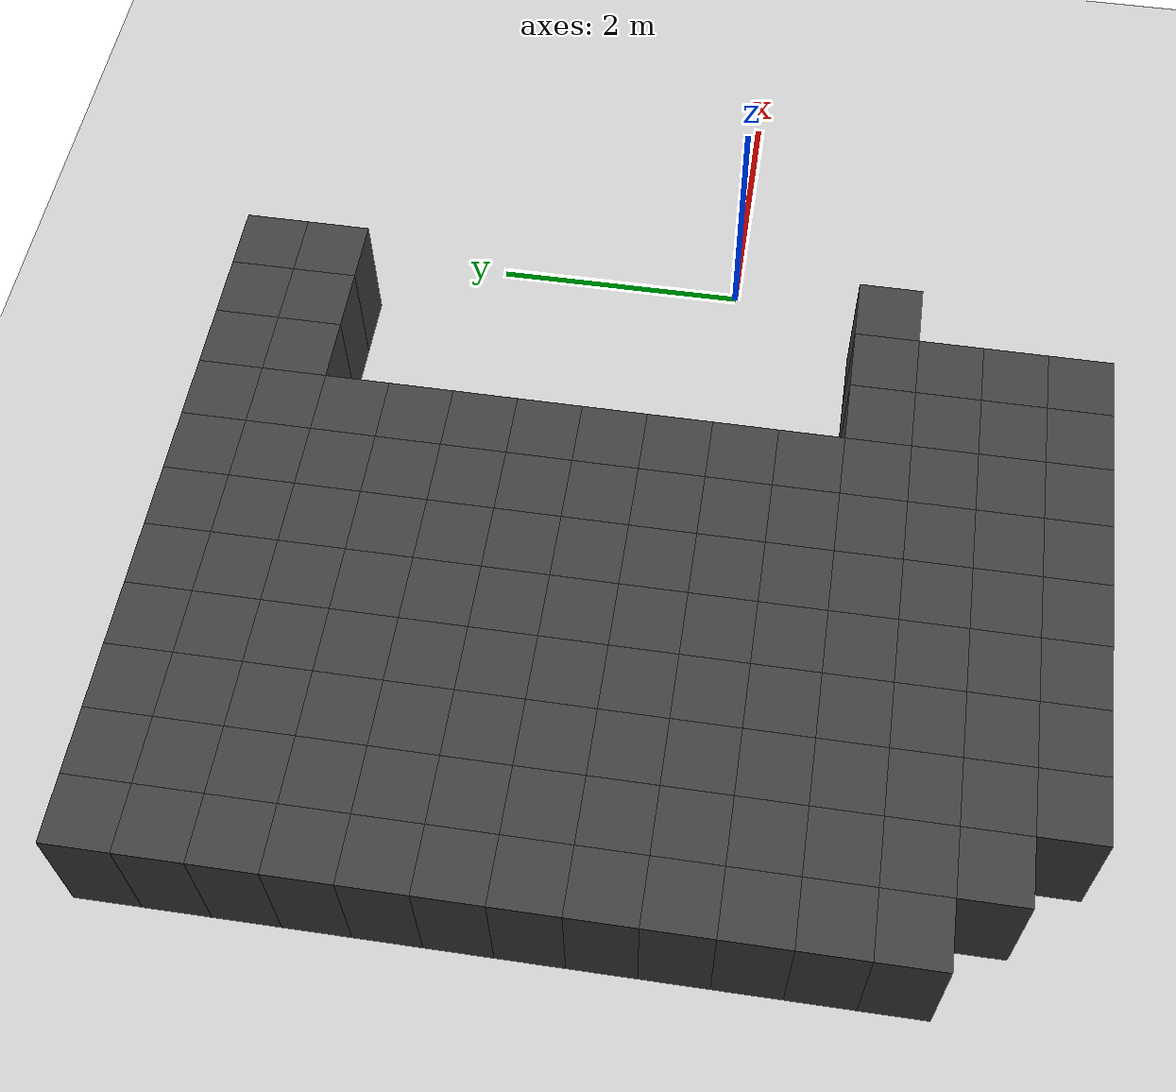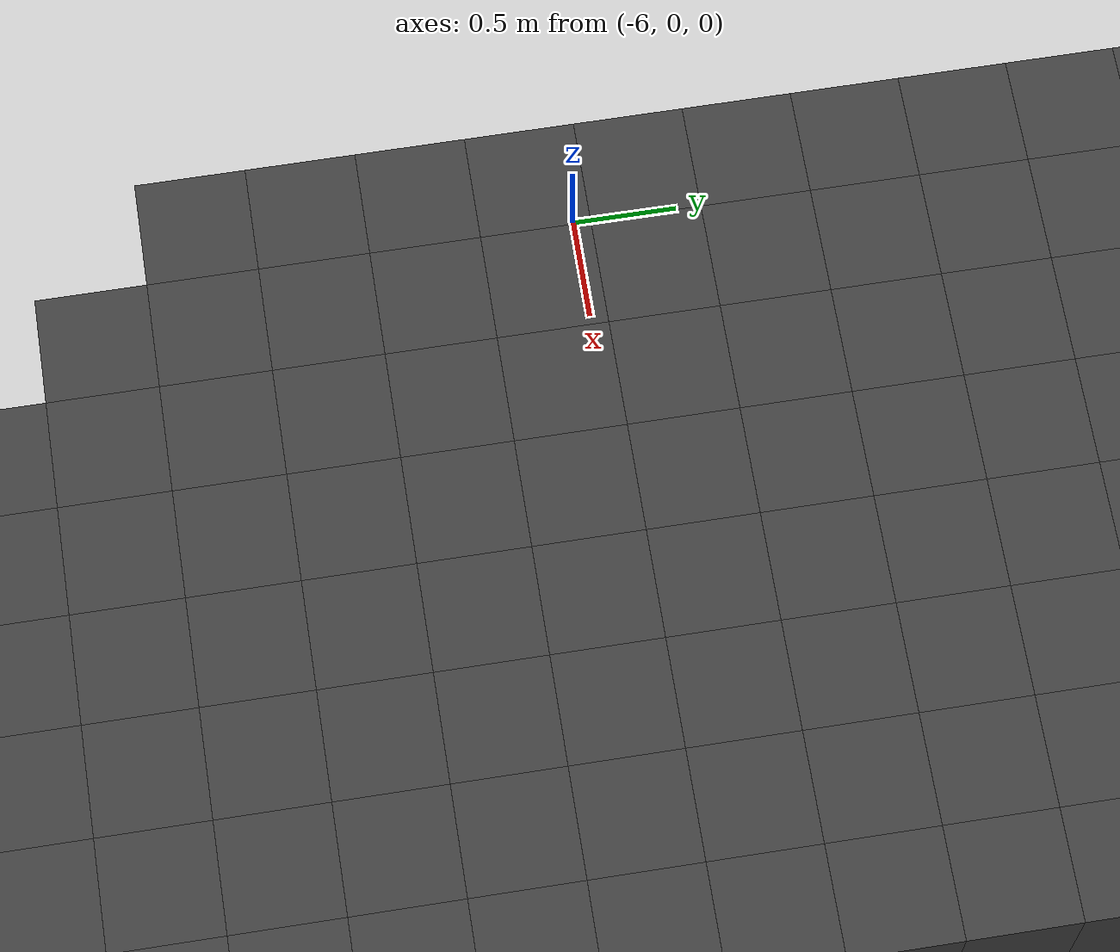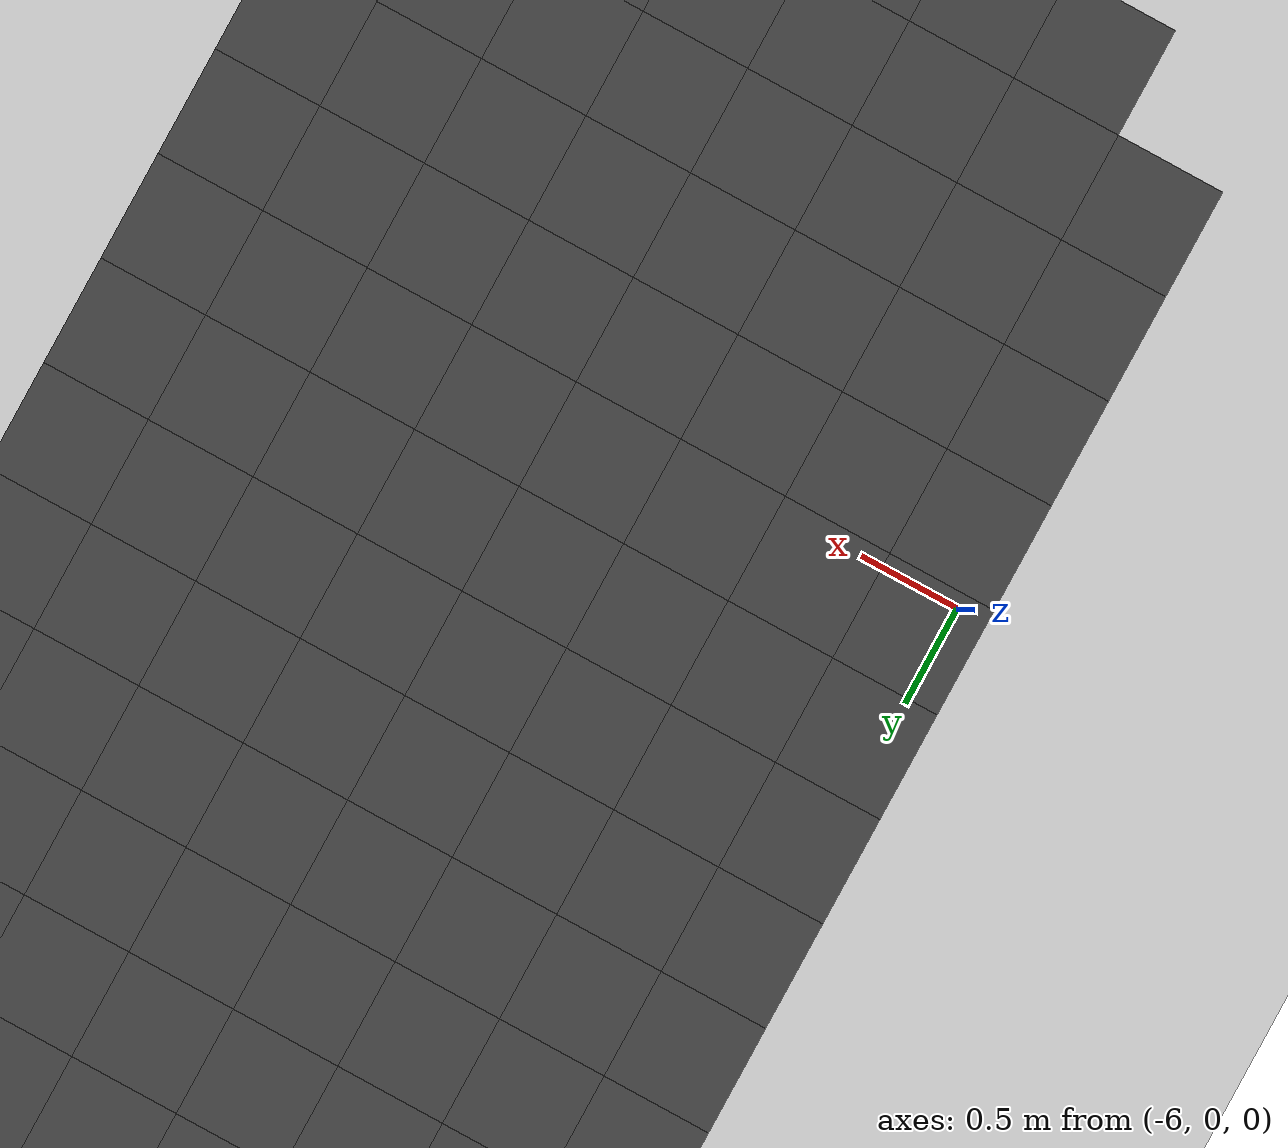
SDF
<sdf version="1.7">
 <world name="map_13994">
  <model name="ground_plane">
   <static>true</static>
   <link name="link">
    <collision name="collision">
     <geometry><plane><normal>0 0 1</normal><size>200 200</size></plane></geometry>
    </collision>
    <visual name="visual">
     <geometry><plane><normal>0 0 1</normal><size>200 200</size></plane></geometry>
     <material><ambient>0.8 0.8 0.8 1</ambient><diffuse>0.8 0.8 0.8 1</diffuse></material>
    </visual>
   </link>
  </model>
  <model name="maze_environment">
   <static>true</static>
   <link name="wall_533">
    <pose>-5.750 3.750 0.500 0 0 0</pose>
    <collision name="col"><geometry><box><size>0.5 0.5 1.0</size></box></geometry></collision>
    <visual name="vis">
     <geometry><box><size>0.5 0.5 1.0</size></box></geometry>
     <material><ambient>0.15 0.15 0.15 1</ambient><diffuse>0.25 0.25 0.25 1</diffuse></material>
    </visual>
   </link>
   <link name="wall_534">
    <pose>-5.250 3.750 0.500 0 0 0</pose>
    <collision name="col"><geometry><box><size>0.5 0.5 1.0</size></box></geometry></collision>
    <visual name="vis">
     <geometry><box><size>0.5 0.5 1.0</size></box></geometry>
     <material><ambient>0.15 0.15 0.15 1</ambient><diffuse>0.25 0.25 0.25 1</diffuse></material>
    </visual>
   </link>
   <link name="wall_535">
    <pose>-4.750 3.750 0.500 0 0 0</pose>
    <collision name="col"><geometry><box><size>0.5 0.5 1.0</size></box></geometry></collision>
    <visual name="vis">
     <geometry><box><size>0.5 0.5 1.0</size></box></geometry>
     <material><ambient>0.15 0.15 0.15 1</ambient><diffuse>0.25 0.25 0.25 1</diffuse></material>
    </visual>
   </link>
   <link name="wall_536">
    <pose>-4.250 3.750 0.500 0 0 0</pose>
    <collision name="col"><geometry><box><size>0.5 0.5 1.0</size></box></geometry></collision>
    <visual name="vis">
     <geometry><box><size>0.5 0.5 1.0</size></box></geometry>
     <material><ambient>0.15 0.15 0.15 1</ambient><diffuse>0.25 0.25 0.25 1</diffuse></material>
    </visual>
   </link>
   <link name="wall_537">
    <pose>-3.750 3.750 0.500 0 0 0</pose>
    <collision name="col"><geometry><box><size>0.5 0.5 1.0</size></box></geometry></collision>
    <visual name="vis">
     <geometry><box><size>0.5 0.5 1.0</size></box></geometry>
     <material><ambient>0.15 0.15 0.15 1</ambient><diffuse>0.25 0.25 0.25 1</diffuse></material>
    </visual>
   </link>
   <link name="wall_538">
    <pose>-3.250 3.750 0.500 0 0 0</pose>
    <collision name="col"><geometry><box><size>0.5 0.5 1.0</size></box></geometry></collision>
    <visual name="vis">
     <geometry><box><size>0.5 0.5 1.0</size></box></geometry>
     <material><ambient>0.15 0.15 0.15 1</ambient><diffuse>0.25 0.25 0.25 1</diffuse></material>
    </visual>
   </link>
   <link name="wall_539">
    <pose>-2.750 3.750 0.500 0 0 0</pose>
    <collision name="col"><geometry><box><size>0.5 0.5 1.0</size></box></geometry></collision>
    <visual name="vis">
     <geometry><box><size>0.5 0.5 1.0</size></box></geometry>
     <material><ambient>0.15 0.15 0.15 1</ambient><diffuse>0.25 0.25 0.25 1</diffuse></material>
    </visual>
   </link>
   <link name="wall_540">
    <pose>-2.250 3.750 0.500 0 0 0</pose>
    <collision name="col"><geometry><box><size>0.5 0.5 1.0</size></box></geometry></collision>
    <visual name="vis">
     <geometry><box><size>0.5 0.5 1.0</size></box></geometry>
     <material><ambient>0.15 0.15 0.15 1</ambient><diffuse>0.25 0.25 0.25 1</diffuse></material>
    </visual>
   </link>
   <link name="wall_541">
    <pose>-1.750 3.750 0.500 0 0 0</pose>
    <collision name="col"><geometry><box><size>0.5 0.5 1.0</size></box></geometry></collision>
    <visual name="vis">
     <geometry><box><size>0.5 0.5 1.0</size></box></geometry>
     <material><ambient>0.15 0.15 0.15 1</ambient><diffuse>0.25 0.25 0.25 1</diffuse></material>
    </visual>
   </link>
   <link name="wall_542">
    <pose>-1.250 3.750 0.500 0 0 0</pose>
    <collision name="col"><geometry><box><size>0.5 0.5 1.0</size></box></geometry></collision>
    <visual name="vis">
     <geometry><box><size>0.5 0.5 1.0</size></box></geometry>
     <material><ambient>0.15 0.15 0.15 1</ambient><diffuse>0.25 0.25 0.25 1</diffuse></material>
    </visual>
   </link>
   <link name="wall_543">
    <pose>-0.750 3.750 0.500 0 0 0</pose>
    <collision name="col"><geometry><box><size>0.5 0.5 1.0</size></box></geometry></collision>
    <visual name="vis">
     <geometry><box><size>0.5 0.5 1.0</size></box></geometry>
     <material><ambient>0.15 0.15 0.15 1</ambient><diffuse>0.25 0.25 0.25 1</diffuse></material>
    </visual>
   </link>
   <link name="wall_573">
    <pose>-5.750 3.250 0.500 0 0 0</pose>
    <collision name="col"><geometry><box><size>0.5 0.5 1.0</size></box></geometry></collision>
    <visual name="vis">
     <geometry><box><size>0.5 0.5 1.0</size></box></geometry>
     <material><ambient>0.15 0.15 0.15 1</ambient><diffuse>0.25 0.25 0.25 1</diffuse></material>
    </visual>
   </link>
   <link name="wall_574">
    <pose>-5.250 3.250 0.500 0 0 0</pose>
    <collision name="col"><geometry><box><size>0.5 0.5 1.0</size></box></geometry></collision>
    <visual name="vis">
     <geometry><box><size>0.5 0.5 1.0</size></box></geometry>
     <material><ambient>0.15 0.15 0.15 1</ambient><diffuse>0.25 0.25 0.25 1</diffuse></material>
    </visual>
   </link>
   <link name="wall_575">
    <pose>-4.750 3.250 0.500 0 0 0</pose>
    <collision name="col"><geometry><box><size>0.5 0.5 1.0</size></box></geometry></collision>
    <visual name="vis">
     <geometry><box><size>0.5 0.5 1.0</size></box></geometry>
     <material><ambient>0.15 0.15 0.15 1</ambient><diffuse>0.25 0.25 0.25 1</diffuse></material>
    </visual>
   </link>
   <link name="wall_576">
    <pose>-4.250 3.250 0.500 0 0 0</pose>
    <collision name="col"><geometry><box><size>0.5 0.5 1.0</size></box></geometry></collision>
    <visual name="vis">
     <geometry><box><size>0.5 0.5 1.0</size></box></geometry>
     <material><ambient>0.15 0.15 0.15 1</ambient><diffuse>0.25 0.25 0.25 1</diffuse></material>
    </visual>
   </link>
   <link name="wall_577">
    <pose>-3.750 3.250 0.500 0 0 0</pose>
    <collision name="col"><geometry><box><size>0.5 0.5 1.0</size></box></geometry></collision>
    <visual name="vis">
     <geometry><box><size>0.5 0.5 1.0</size></box></geometry>
     <material><ambient>0.15 0.15 0.15 1</ambient><diffuse>0.25 0.25 0.25 1</diffuse></material>
    </visual>
   </link>
   <link name="wall_578">
    <pose>-3.250 3.250 0.500 0 0 0</pose>
    <collision name="col"><geometry><box><size>0.5 0.5 1.0</size></box></geometry></collision>
    <visual name="vis">
     <geometry><box><size>0.5 0.5 1.0</size></box></geometry>
     <material><ambient>0.15 0.15 0.15 1</ambient><diffuse>0.25 0.25 0.25 1</diffuse></material>
    </visual>
   </link>
   <link name="wall_579">
    <pose>-2.750 3.250 0.500 0 0 0</pose>
    <collision name="col"><geometry><box><size>0.5 0.5 1.0</size></box></geometry></collision>
    <visual name="vis">
     <geometry><box><size>0.5 0.5 1.0</size></box></geometry>
     <material><ambient>0.15 0.15 0.15 1</ambient><diffuse>0.25 0.25 0.25 1</diffuse></material>
    </visual>
   </link>
   <link name="wall_580">
    <pose>-2.250 3.250 0.500 0 0 0</pose>
    <collision name="col"><geometry><box><size>0.5 0.5 1.0</size></box></geometry></collision>
    <visual name="vis">
     <geometry><box><size>0.5 0.5 1.0</size></box></geometry>
     <material><ambient>0.15 0.15 0.15 1</ambient><diffuse>0.25 0.25 0.25 1</diffuse></material>
    </visual>
   </link>
   <link name="wall_581">
    <pose>-1.750 3.250 0.500 0 0 0</pose>
    <collision name="col"><geometry><box><size>0.5 0.5 1.0</size></box></geometry></collision>
    <visual name="vis">
     <geometry><box><size>0.5 0.5 1.0</size></box></geometry>
     <material><ambient>0.15 0.15 0.15 1</ambient><diffuse>0.25 0.25 0.25 1</diffuse></material>
    </visual>
   </link>
   <link name="wall_582">
    <pose>-1.250 3.250 0.500 0 0 0</pose>
    <collision name="col"><geometry><box><size>0.5 0.5 1.0</size></box></geometry></collision>
    <visual name="vis">
     <geometry><box><size>0.5 0.5 1.0</size></box></geometry>
     <material><ambient>0.15 0.15 0.15 1</ambient><diffuse>0.25 0.25 0.25 1</diffuse></material>
    </visual>
   </link>
   <link name="wall_583">
    <pose>-0.750 3.250 0.500 0 0 0</pose>
    <collision name="col"><geometry><box><size>0.5 0.5 1.0</size></box></geometry></collision>
    <visual name="vis">
     <geometry><box><size>0.5 0.5 1.0</size></box></geometry>
     <material><ambient>0.15 0.15 0.15 1</ambient><diffuse>0.25 0.25 0.25 1</diffuse></material>
    </visual>
   </link>
   <link name="wall_613">
    <pose>-5.750 2.750 0.500 0 0 0</pose>
    <collision name="col"><geometry><box><size>0.5 0.5 1.0</size></box></geometry></collision>
    <visual name="vis">
     <geometry><box><size>0.5 0.5 1.0</size></box></geometry>
     <material><ambient>0.15 0.15 0.15 1</ambient><diffuse>0.25 0.25 0.25 1</diffuse></material>
    </visual>
   </link>
   <link name="wall_614">
    <pose>-5.250 2.750 0.500 0 0 0</pose>
    <collision name="col"><geometry><box><size>0.5 0.5 1.0</size></box></geometry></collision>
    <visual name="vis">
     <geometry><box><size>0.5 0.5 1.0</size></box></geometry>
     <material><ambient>0.15 0.15 0.15 1</ambient><diffuse>0.25 0.25 0.25 1</diffuse></material>
    </visual>
   </link>
   <link name="wall_615">
    <pose>-4.750 2.750 0.500 0 0 0</pose>
    <collision name="col"><geometry><box><size>0.5 0.5 1.0</size></box></geometry></collision>
    <visual name="vis">
     <geometry><box><size>0.5 0.5 1.0</size></box></geometry>
     <material><ambient>0.15 0.15 0.15 1</ambient><diffuse>0.25 0.25 0.25 1</diffuse></material>
    </visual>
   </link>
   <link name="wall_616">
    <pose>-4.250 2.750 0.500 0 0 0</pose>
    <collision name="col"><geometry><box><size>0.5 0.5 1.0</size></box></geometry></collision>
    <visual name="vis">
     <geometry><box><size>0.5 0.5 1.0</size></box></geometry>
     <material><ambient>0.15 0.15 0.15 1</ambient><diffuse>0.25 0.25 0.25 1</diffuse></material>
    </visual>
   </link>
   <link name="wall_617">
    <pose>-3.750 2.750 0.500 0 0 0</pose>
    <collision name="col"><geometry><box><size>0.5 0.5 1.0</size></box></geometry></collision>
    <visual name="vis">
     <geometry><box><size>0.5 0.5 1.0</size></box></geometry>
     <material><ambient>0.15 0.15 0.15 1</ambient><diffuse>0.25 0.25 0.25 1</diffuse></material>
    </visual>
   </link>
   <link name="wall_618">
    <pose>-3.250 2.750 0.500 0 0 0</pose>
    <collision name="col"><geometry><box><size>0.5 0.5 1.0</size></box></geometry></collision>
    <visual name="vis">
     <geometry><box><size>0.5 0.5 1.0</size></box></geometry>
     <material><ambient>0.15 0.15 0.15 1</ambient><diffuse>0.25 0.25 0.25 1</diffuse></material>
    </visual>
   </link>
   <link name="wall_619">
    <pose>-2.750 2.750 0.500 0 0 0</pose>
    <collision name="col"><geometry><box><size>0.5 0.5 1.0</size></box></geometry></collision>
    <visual name="vis">
     <geometry><box><size>0.5 0.5 1.0</size></box></geometry>
     <material><ambient>0.15 0.15 0.15 1</ambient><diffuse>0.25 0.25 0.25 1</diffuse></material>
    </visual>
   </link>
   <link name="wall_620">
    <pose>-2.250 2.750 0.500 0 0 0</pose>
    <collision name="col"><geometry><box><size>0.5 0.5 1.0</size></box></geometry></collision>
    <visual name="vis">
     <geometry><box><size>0.5 0.5 1.0</size></box></geometry>
     <material><ambient>0.15 0.15 0.15 1</ambient><diffuse>0.25 0.25 0.25 1</diffuse></material>
    </visual>
   </link>
   <link name="wall_642">
    <pose>-5.750 2.250 0.500 0 0 0</pose>
    <collision name="col"><geometry><box><size>0.5 0.5 1.0</size></box></geometry></collision>
    <visual name="vis">
     <geometry><box><size>0.5 0.5 1.0</size></box></geometry>
     <material><ambient>0.15 0.15 0.15 1</ambient><diffuse>0.25 0.25 0.25 1</diffuse></material>
    </visual>
   </link>
   <link name="wall_643">
    <pose>-5.250 2.250 0.500 0 0 0</pose>
    <collision name="col"><geometry><box><size>0.5 0.5 1.0</size></box></geometry></collision>
    <visual name="vis">
     <geometry><box><size>0.5 0.5 1.0</size></box></geometry>
     <material><ambient>0.15 0.15 0.15 1</ambient><diffuse>0.25 0.25 0.25 1</diffuse></material>
    </visual>
   </link>
   <link name="wall_644">
    <pose>-4.750 2.250 0.500 0 0 0</pose>
    <collision name="col"><geometry><box><size>0.5 0.5 1.0</size></box></geometry></collision>
    <visual name="vis">
     <geometry><box><size>0.5 0.5 1.0</size></box></geometry>
     <material><ambient>0.15 0.15 0.15 1</ambient><diffuse>0.25 0.25 0.25 1</diffuse></material>
    </visual>
   </link>
   <link name="wall_645">
    <pose>-4.250 2.250 0.500 0 0 0</pose>
    <collision name="col"><geometry><box><size>0.5 0.5 1.0</size></box></geometry></collision>
    <visual name="vis">
     <geometry><box><size>0.5 0.5 1.0</size></box></geometry>
     <material><ambient>0.15 0.15 0.15 1</ambient><diffuse>0.25 0.25 0.25 1</diffuse></material>
    </visual>
   </link>
   <link name="wall_646">
    <pose>-3.750 2.250 0.500 0 0 0</pose>
    <collision name="col"><geometry><box><size>0.5 0.5 1.0</size></box></geometry></collision>
    <visual name="vis">
     <geometry><box><size>0.5 0.5 1.0</size></box></geometry>
     <material><ambient>0.15 0.15 0.15 1</ambient><diffuse>0.25 0.25 0.25 1</diffuse></material>
    </visual>
   </link>
   <link name="wall_647">
    <pose>-3.250 2.250 0.500 0 0 0</pose>
    <collision name="col"><geometry><box><size>0.5 0.5 1.0</size></box></geometry></collision>
    <visual name="vis">
     <geometry><box><size>0.5 0.5 1.0</size></box></geometry>
     <material><ambient>0.15 0.15 0.15 1</ambient><diffuse>0.25 0.25 0.25 1</diffuse></material>
    </visual>
   </link>
   <link name="wall_648">
    <pose>-2.750 2.250 0.500 0 0 0</pose>
    <collision name="col"><geometry><box><size>0.5 0.5 1.0</size></box></geometry></collision>
    <visual name="vis">
     <geometry><box><size>0.5 0.5 1.0</size></box></geometry>
     <material><ambient>0.15 0.15 0.15 1</ambient><diffuse>0.25 0.25 0.25 1</diffuse></material>
    </visual>
   </link>
   <link name="wall_649">
    <pose>-2.250 2.250 0.500 0 0 0</pose>
    <collision name="col"><geometry><box><size>0.5 0.5 1.0</size></box></geometry></collision>
    <visual name="vis">
     <geometry><box><size>0.5 0.5 1.0</size></box></geometry>
     <material><ambient>0.15 0.15 0.15 1</ambient><diffuse>0.25 0.25 0.25 1</diffuse></material>
    </visual>
   </link>
   <link name="wall_671">
    <pose>-5.750 1.750 0.500 0 0 0</pose>
    <collision name="col"><geometry><box><size>0.5 0.5 1.0</size></box></geometry></collision>
    <visual name="vis">
     <geometry><box><size>0.5 0.5 1.0</size></box></geometry>
     <material><ambient>0.15 0.15 0.15 1</ambient><diffuse>0.25 0.25 0.25 1</diffuse></material>
    </visual>
   </link>
   <link name="wall_672">
    <pose>-5.250 1.750 0.500 0 0 0</pose>
    <collision name="col"><geometry><box><size>0.5 0.5 1.0</size></box></geometry></collision>
    <visual name="vis">
     <geometry><box><size>0.5 0.5 1.0</size></box></geometry>
     <material><ambient>0.15 0.15 0.15 1</ambient><diffuse>0.25 0.25 0.25 1</diffuse></material>
    </visual>
   </link>
   <link name="wall_673">
    <pose>-4.750 1.750 0.500 0 0 0</pose>
    <collision name="col"><geometry><box><size>0.5 0.5 1.0</size></box></geometry></collision>
    <visual name="vis">
     <geometry><box><size>0.5 0.5 1.0</size></box></geometry>
     <material><ambient>0.15 0.15 0.15 1</ambient><diffuse>0.25 0.25 0.25 1</diffuse></material>
    </visual>
   </link>
   <link name="wall_674">
    <pose>-4.250 1.750 0.500 0 0 0</pose>
    <collision name="col"><geometry><box><size>0.5 0.5 1.0</size></box></geometry></collision>
    <visual name="vis">
     <geometry><box><size>0.5 0.5 1.0</size></box></geometry>
     <material><ambient>0.15 0.15 0.15 1</ambient><diffuse>0.25 0.25 0.25 1</diffuse></material>
    </visual>
   </link>
   <link name="wall_675">
    <pose>-3.750 1.750 0.500 0 0 0</pose>
    <collision name="col"><geometry><box><size>0.5 0.5 1.0</size></box></geometry></collision>
    <visual name="vis">
     <geometry><box><size>0.5 0.5 1.0</size></box></geometry>
     <material><ambient>0.15 0.15 0.15 1</ambient><diffuse>0.25 0.25 0.25 1</diffuse></material>
    </visual>
   </link>
   <link name="wall_676">
    <pose>-3.250 1.750 0.500 0 0 0</pose>
    <collision name="col"><geometry><box><size>0.5 0.5 1.0</size></box></geometry></collision>
    <visual name="vis">
     <geometry><box><size>0.5 0.5 1.0</size></box></geometry>
     <material><ambient>0.15 0.15 0.15 1</ambient><diffuse>0.25 0.25 0.25 1</diffuse></material>
    </visual>
   </link>
   <link name="wall_677">
    <pose>-2.750 1.750 0.500 0 0 0</pose>
    <collision name="col"><geometry><box><size>0.5 0.5 1.0</size></box></geometry></collision>
    <visual name="vis">
     <geometry><box><size>0.5 0.5 1.0</size></box></geometry>
     <material><ambient>0.15 0.15 0.15 1</ambient><diffuse>0.25 0.25 0.25 1</diffuse></material>
    </visual>
   </link>
   <link name="wall_678">
    <pose>-2.250 1.750 0.500 0 0 0</pose>
    <collision name="col"><geometry><box><size>0.5 0.5 1.0</size></box></geometry></collision>
    <visual name="vis">
     <geometry><box><size>0.5 0.5 1.0</size></box></geometry>
     <material><ambient>0.15 0.15 0.15 1</ambient><diffuse>0.25 0.25 0.25 1</diffuse></material>
    </visual>
   </link>
   <link name="wall_703">
    <pose>-5.750 1.250 0.500 0 0 0</pose>
    <collision name="col"><geometry><box><size>0.5 0.5 1.0</size></box></geometry></collision>
    <visual name="vis">
     <geometry><box><size>0.5 0.5 1.0</size></box></geometry>
     <material><ambient>0.15 0.15 0.15 1</ambient><diffuse>0.25 0.25 0.25 1</diffuse></material>
    </visual>
   </link>
   <link name="wall_704">
    <pose>-5.250 1.250 0.500 0 0 0</pose>
    <collision name="col"><geometry><box><size>0.5 0.5 1.0</size></box></geometry></collision>
    <visual name="vis">
     <geometry><box><size>0.5 0.5 1.0</size></box></geometry>
     <material><ambient>0.15 0.15 0.15 1</ambient><diffuse>0.25 0.25 0.25 1</diffuse></material>
    </visual>
   </link>
   <link name="wall_705">
    <pose>-4.750 1.250 0.500 0 0 0</pose>
    <collision name="col"><geometry><box><size>0.5 0.5 1.0</size></box></geometry></collision>
    <visual name="vis">
     <geometry><box><size>0.5 0.5 1.0</size></box></geometry>
     <material><ambient>0.15 0.15 0.15 1</ambient><diffuse>0.25 0.25 0.25 1</diffuse></material>
    </visual>
   </link>
   <link name="wall_706">
    <pose>-4.250 1.250 0.500 0 0 0</pose>
    <collision name="col"><geometry><box><size>0.5 0.5 1.0</size></box></geometry></collision>
    <visual name="vis">
     <geometry><box><size>0.5 0.5 1.0</size></box></geometry>
     <material><ambient>0.15 0.15 0.15 1</ambient><diffuse>0.25 0.25 0.25 1</diffuse></material>
    </visual>
   </link>
   <link name="wall_707">
    <pose>-3.750 1.250 0.500 0 0 0</pose>
    <collision name="col"><geometry><box><size>0.5 0.5 1.0</size></box></geometry></collision>
    <visual name="vis">
     <geometry><box><size>0.5 0.5 1.0</size></box></geometry>
     <material><ambient>0.15 0.15 0.15 1</ambient><diffuse>0.25 0.25 0.25 1</diffuse></material>
    </visual>
   </link>
   <link name="wall_708">
    <pose>-3.250 1.250 0.500 0 0 0</pose>
    <collision name="col"><geometry><box><size>0.5 0.5 1.0</size></box></geometry></collision>
    <visual name="vis">
     <geometry><box><size>0.5 0.5 1.0</size></box></geometry>
     <material><ambient>0.15 0.15 0.15 1</ambient><diffuse>0.25 0.25 0.25 1</diffuse></material>
    </visual>
   </link>
   <link name="wall_709">
    <pose>-2.750 1.250 0.500 0 0 0</pose>
    <collision name="col"><geometry><box><size>0.5 0.5 1.0</size></box></geometry></collision>
    <visual name="vis">
     <geometry><box><size>0.5 0.5 1.0</size></box></geometry>
     <material><ambient>0.15 0.15 0.15 1</ambient><diffuse>0.25 0.25 0.25 1</diffuse></material>
    </visual>
   </link>
   <link name="wall_710">
    <pose>-2.250 1.250 0.500 0 0 0</pose>
    <collision name="col"><geometry><box><size>0.5 0.5 1.0</size></box></geometry></collision>
    <visual name="vis">
     <geometry><box><size>0.5 0.5 1.0</size></box></geometry>
     <material><ambient>0.15 0.15 0.15 1</ambient><diffuse>0.25 0.25 0.25 1</diffuse></material>
    </visual>
   </link>
   <link name="wall_736">
    <pose>-5.750 0.750 0.500 0 0 0</pose>
    <collision name="col"><geometry><box><size>0.5 0.5 1.0</size></box></geometry></collision>
    <visual name="vis">
     <geometry><box><size>0.5 0.5 1.0</size></box></geometry>
     <material><ambient>0.15 0.15 0.15 1</ambient><diffuse>0.25 0.25 0.25 1</diffuse></material>
    </visual>
   </link>
   <link name="wall_737">
    <pose>-5.250 0.750 0.500 0 0 0</pose>
    <collision name="col"><geometry><box><size>0.5 0.5 1.0</size></box></geometry></collision>
    <visual name="vis">
     <geometry><box><size>0.5 0.5 1.0</size></box></geometry>
     <material><ambient>0.15 0.15 0.15 1</ambient><diffuse>0.25 0.25 0.25 1</diffuse></material>
    </visual>
   </link>
   <link name="wall_738">
    <pose>-4.750 0.750 0.500 0 0 0</pose>
    <collision name="col"><geometry><box><size>0.5 0.5 1.0</size></box></geometry></collision>
    <visual name="vis">
     <geometry><box><size>0.5 0.5 1.0</size></box></geometry>
     <material><ambient>0.15 0.15 0.15 1</ambient><diffuse>0.25 0.25 0.25 1</diffuse></material>
    </visual>
   </link>
   <link name="wall_739">
    <pose>-4.250 0.750 0.500 0 0 0</pose>
    <collision name="col"><geometry><box><size>0.5 0.5 1.0</size></box></geometry></collision>
    <visual name="vis">
     <geometry><box><size>0.5 0.5 1.0</size></box></geometry>
     <material><ambient>0.15 0.15 0.15 1</ambient><diffuse>0.25 0.25 0.25 1</diffuse></material>
    </visual>
   </link>
   <link name="wall_740">
    <pose>-3.750 0.750 0.500 0 0 0</pose>
    <collision name="col"><geometry><box><size>0.5 0.5 1.0</size></box></geometry></collision>
    <visual name="vis">
     <geometry><box><size>0.5 0.5 1.0</size></box></geometry>
     <material><ambient>0.15 0.15 0.15 1</ambient><diffuse>0.25 0.25 0.25 1</diffuse></material>
    </visual>
   </link>
   <link name="wall_741">
    <pose>-3.250 0.750 0.500 0 0 0</pose>
    <collision name="col"><geometry><box><size>0.5 0.5 1.0</size></box></geometry></collision>
    <visual name="vis">
     <geometry><box><size>0.5 0.5 1.0</size></box></geometry>
     <material><ambient>0.15 0.15 0.15 1</ambient><diffuse>0.25 0.25 0.25 1</diffuse></material>
    </visual>
   </link>
   <link name="wall_742">
    <pose>-2.750 0.750 0.500 0 0 0</pose>
    <collision name="col"><geometry><box><size>0.5 0.5 1.0</size></box></geometry></collision>
    <visual name="vis">
     <geometry><box><size>0.5 0.5 1.0</size></box></geometry>
     <material><ambient>0.15 0.15 0.15 1</ambient><diffuse>0.25 0.25 0.25 1</diffuse></material>
    </visual>
   </link>
   <link name="wall_743">
    <pose>-2.250 0.750 0.500 0 0 0</pose>
    <collision name="col"><geometry><box><size>0.5 0.5 1.0</size></box></geometry></collision>
    <visual name="vis">
     <geometry><box><size>0.5 0.5 1.0</size></box></geometry>
     <material><ambient>0.15 0.15 0.15 1</ambient><diffuse>0.25 0.25 0.25 1</diffuse></material>
    </visual>
   </link>
   <link name="wall_762">
    <pose>-5.750 0.250 0.500 0 0 0</pose>
    <collision name="col"><geometry><box><size>0.5 0.5 1.0</size></box></geometry></collision>
    <visual name="vis">
     <geometry><box><size>0.5 0.5 1.0</size></box></geometry>
     <material><ambient>0.15 0.15 0.15 1</ambient><diffuse>0.25 0.25 0.25 1</diffuse></material>
    </visual>
   </link>
   <link name="wall_763">
    <pose>-5.250 0.250 0.500 0 0 0</pose>
    <collision name="col"><geometry><box><size>0.5 0.5 1.0</size></box></geometry></collision>
    <visual name="vis">
     <geometry><box><size>0.5 0.5 1.0</size></box></geometry>
     <material><ambient>0.15 0.15 0.15 1</ambient><diffuse>0.25 0.25 0.25 1</diffuse></material>
    </visual>
   </link>
   <link name="wall_764">
    <pose>-4.750 0.250 0.500 0 0 0</pose>
    <collision name="col"><geometry><box><size>0.5 0.5 1.0</size></box></geometry></collision>
    <visual name="vis">
     <geometry><box><size>0.5 0.5 1.0</size></box></geometry>
     <material><ambient>0.15 0.15 0.15 1</ambient><diffuse>0.25 0.25 0.25 1</diffuse></material>
    </visual>
   </link>
   <link name="wall_765">
    <pose>-4.250 0.250 0.500 0 0 0</pose>
    <collision name="col"><geometry><box><size>0.5 0.5 1.0</size></box></geometry></collision>
    <visual name="vis">
     <geometry><box><size>0.5 0.5 1.0</size></box></geometry>
     <material><ambient>0.15 0.15 0.15 1</ambient><diffuse>0.25 0.25 0.25 1</diffuse></material>
    </visual>
   </link>
   <link name="wall_766">
    <pose>-3.750 0.250 0.500 0 0 0</pose>
    <collision name="col"><geometry><box><size>0.5 0.5 1.0</size></box></geometry></collision>
    <visual name="vis">
     <geometry><box><size>0.5 0.5 1.0</size></box></geometry>
     <material><ambient>0.15 0.15 0.15 1</ambient><diffuse>0.25 0.25 0.25 1</diffuse></material>
    </visual>
   </link>
   <link name="wall_767">
    <pose>-3.250 0.250 0.500 0 0 0</pose>
    <collision name="col"><geometry><box><size>0.5 0.5 1.0</size></box></geometry></collision>
    <visual name="vis">
     <geometry><box><size>0.5 0.5 1.0</size></box></geometry>
     <material><ambient>0.15 0.15 0.15 1</ambient><diffuse>0.25 0.25 0.25 1</diffuse></material>
    </visual>
   </link>
   <link name="wall_768">
    <pose>-2.750 0.250 0.500 0 0 0</pose>
    <collision name="col"><geometry><box><size>0.5 0.5 1.0</size></box></geometry></collision>
    <visual name="vis">
     <geometry><box><size>0.5 0.5 1.0</size></box></geometry>
     <material><ambient>0.15 0.15 0.15 1</ambient><diffuse>0.25 0.25 0.25 1</diffuse></material>
    </visual>
   </link>
   <link name="wall_769">
    <pose>-2.250 0.250 0.500 0 0 0</pose>
    <collision name="col"><geometry><box><size>0.5 0.5 1.0</size></box></geometry></collision>
    <visual name="vis">
     <geometry><box><size>0.5 0.5 1.0</size></box></geometry>
     <material><ambient>0.15 0.15 0.15 1</ambient><diffuse>0.25 0.25 0.25 1</diffuse></material>
    </visual>
   </link>
   <link name="wall_797">
    <pose>-5.750 -0.250 0.500 0 0 0</pose>
    <collision name="col"><geometry><box><size>0.5 0.5 1.0</size></box></geometry></collision>
    <visual name="vis">
     <geometry><box><size>0.5 0.5 1.0</size></box></geometry>
     <material><ambient>0.15 0.15 0.15 1</ambient><diffuse>0.25 0.25 0.25 1</diffuse></material>
    </visual>
   </link>
   <link name="wall_798">
    <pose>-5.250 -0.250 0.500 0 0 0</pose>
    <collision name="col"><geometry><box><size>0.5 0.5 1.0</size></box></geometry></collision>
    <visual name="vis">
     <geometry><box><size>0.5 0.5 1.0</size></box></geometry>
     <material><ambient>0.15 0.15 0.15 1</ambient><diffuse>0.25 0.25 0.25 1</diffuse></material>
    </visual>
   </link>
   <link name="wall_799">
    <pose>-4.750 -0.250 0.500 0 0 0</pose>
    <collision name="col"><geometry><box><size>0.5 0.5 1.0</size></box></geometry></collision>
    <visual name="vis">
     <geometry><box><size>0.5 0.5 1.0</size></box></geometry>
     <material><ambient>0.15 0.15 0.15 1</ambient><diffuse>0.25 0.25 0.25 1</diffuse></material>
    </visual>
   </link>
   <link name="wall_800">
    <pose>-4.250 -0.250 0.500 0 0 0</pose>
    <collision name="col"><geometry><box><size>0.5 0.5 1.0</size></box></geometry></collision>
    <visual name="vis">
     <geometry><box><size>0.5 0.5 1.0</size></box></geometry>
     <material><ambient>0.15 0.15 0.15 1</ambient><diffuse>0.25 0.25 0.25 1</diffuse></material>
    </visual>
   </link>
   <link name="wall_801">
    <pose>-3.750 -0.250 0.500 0 0 0</pose>
    <collision name="col"><geometry><box><size>0.5 0.5 1.0</size></box></geometry></collision>
    <visual name="vis">
     <geometry><box><size>0.5 0.5 1.0</size></box></geometry>
     <material><ambient>0.15 0.15 0.15 1</ambient><diffuse>0.25 0.25 0.25 1</diffuse></material>
    </visual>
   </link>
   <link name="wall_802">
    <pose>-3.250 -0.250 0.500 0 0 0</pose>
    <collision name="col"><geometry><box><size>0.5 0.5 1.0</size></box></geometry></collision>
    <visual name="vis">
     <geometry><box><size>0.5 0.5 1.0</size></box></geometry>
     <material><ambient>0.15 0.15 0.15 1</ambient><diffuse>0.25 0.25 0.25 1</diffuse></material>
    </visual>
   </link>
   <link name="wall_803">
    <pose>-2.750 -0.250 0.500 0 0 0</pose>
    <collision name="col"><geometry><box><size>0.5 0.5 1.0</size></box></geometry></collision>
    <visual name="vis">
     <geometry><box><size>0.5 0.5 1.0</size></box></geometry>
     <material><ambient>0.15 0.15 0.15 1</ambient><diffuse>0.25 0.25 0.25 1</diffuse></material>
    </visual>
   </link>
   <link name="wall_804">
    <pose>-2.250 -0.250 0.500 0 0 0</pose>
    <collision name="col"><geometry><box><size>0.5 0.5 1.0</size></box></geometry></collision>
    <visual name="vis">
     <geometry><box><size>0.5 0.5 1.0</size></box></geometry>
     <material><ambient>0.15 0.15 0.15 1</ambient><diffuse>0.25 0.25 0.25 1</diffuse></material>
    </visual>
   </link>
   <link name="wall_828">
    <pose>-5.750 -0.750 0.500 0 0 0</pose>
    <collision name="col"><geometry><box><size>0.5 0.5 1.0</size></box></geometry></collision>
    <visual name="vis">
     <geometry><box><size>0.5 0.5 1.0</size></box></geometry>
     <material><ambient>0.15 0.15 0.15 1</ambient><diffuse>0.25 0.25 0.25 1</diffuse></material>
    </visual>
   </link>
   <link name="wall_829">
    <pose>-5.250 -0.750 0.500 0 0 0</pose>
    <collision name="col"><geometry><box><size>0.5 0.5 1.0</size></box></geometry></collision>
    <visual name="vis">
     <geometry><box><size>0.5 0.5 1.0</size></box></geometry>
     <material><ambient>0.15 0.15 0.15 1</ambient><diffuse>0.25 0.25 0.25 1</diffuse></material>
    </visual>
   </link>
   <link name="wall_830">
    <pose>-4.750 -0.750 0.500 0 0 0</pose>
    <collision name="col"><geometry><box><size>0.5 0.5 1.0</size></box></geometry></collision>
    <visual name="vis">
     <geometry><box><size>0.5 0.5 1.0</size></box></geometry>
     <material><ambient>0.15 0.15 0.15 1</ambient><diffuse>0.25 0.25 0.25 1</diffuse></material>
    </visual>
   </link>
   <link name="wall_831">
    <pose>-4.250 -0.750 0.500 0 0 0</pose>
    <collision name="col"><geometry><box><size>0.5 0.5 1.0</size></box></geometry></collision>
    <visual name="vis">
     <geometry><box><size>0.5 0.5 1.0</size></box></geometry>
     <material><ambient>0.15 0.15 0.15 1</ambient><diffuse>0.25 0.25 0.25 1</diffuse></material>
    </visual>
   </link>
   <link name="wall_832">
    <pose>-3.750 -0.750 0.500 0 0 0</pose>
    <collision name="col"><geometry><box><size>0.5 0.5 1.0</size></box></geometry></collision>
    <visual name="vis">
     <geometry><box><size>0.5 0.5 1.0</size></box></geometry>
     <material><ambient>0.15 0.15 0.15 1</ambient><diffuse>0.25 0.25 0.25 1</diffuse></material>
    </visual>
   </link>
   <link name="wall_833">
    <pose>-3.250 -0.750 0.500 0 0 0</pose>
    <collision name="col"><geometry><box><size>0.5 0.5 1.0</size></box></geometry></collision>
    <visual name="vis">
     <geometry><box><size>0.5 0.5 1.0</size></box></geometry>
     <material><ambient>0.15 0.15 0.15 1</ambient><diffuse>0.25 0.25 0.25 1</diffuse></material>
    </visual>
   </link>
   <link name="wall_834">
    <pose>-2.750 -0.750 0.500 0 0 0</pose>
    <collision name="col"><geometry><box><size>0.5 0.5 1.0</size></box></geometry></collision>
    <visual name="vis">
     <geometry><box><size>0.5 0.5 1.0</size></box></geometry>
     <material><ambient>0.15 0.15 0.15 1</ambient><diffuse>0.25 0.25 0.25 1</diffuse></material>
    </visual>
   </link>
   <link name="wall_835">
    <pose>-2.250 -0.750 0.500 0 0 0</pose>
    <collision name="col"><geometry><box><size>0.5 0.5 1.0</size></box></geometry></collision>
    <visual name="vis">
     <geometry><box><size>0.5 0.5 1.0</size></box></geometry>
     <material><ambient>0.15 0.15 0.15 1</ambient><diffuse>0.25 0.25 0.25 1</diffuse></material>
    </visual>
   </link>
   <link name="wall_864">
    <pose>-5.750 -1.250 0.500 0 0 0</pose>
    <collision name="col"><geometry><box><size>0.5 0.5 1.0</size></box></geometry></collision>
    <visual name="vis">
     <geometry><box><size>0.5 0.5 1.0</size></box></geometry>
     <material><ambient>0.15 0.15 0.15 1</ambient><diffuse>0.25 0.25 0.25 1</diffuse></material>
    </visual>
   </link>
   <link name="wall_865">
    <pose>-5.250 -1.250 0.500 0 0 0</pose>
    <collision name="col"><geometry><box><size>0.5 0.5 1.0</size></box></geometry></collision>
    <visual name="vis">
     <geometry><box><size>0.5 0.5 1.0</size></box></geometry>
     <material><ambient>0.15 0.15 0.15 1</ambient><diffuse>0.25 0.25 0.25 1</diffuse></material>
    </visual>
   </link>
   <link name="wall_866">
    <pose>-4.750 -1.250 0.500 0 0 0</pose>
    <collision name="col"><geometry><box><size>0.5 0.5 1.0</size></box></geometry></collision>
    <visual name="vis">
     <geometry><box><size>0.5 0.5 1.0</size></box></geometry>
     <material><ambient>0.15 0.15 0.15 1</ambient><diffuse>0.25 0.25 0.25 1</diffuse></material>
    </visual>
   </link>
   <link name="wall_867">
    <pose>-4.250 -1.250 0.500 0 0 0</pose>
    <collision name="col"><geometry><box><size>0.5 0.5 1.0</size></box></geometry></collision>
    <visual name="vis">
     <geometry><box><size>0.5 0.5 1.0</size></box></geometry>
     <material><ambient>0.15 0.15 0.15 1</ambient><diffuse>0.25 0.25 0.25 1</diffuse></material>
    </visual>
   </link>
   <link name="wall_868">
    <pose>-3.750 -1.250 0.500 0 0 0</pose>
    <collision name="col"><geometry><box><size>0.5 0.5 1.0</size></box></geometry></collision>
    <visual name="vis">
     <geometry><box><size>0.5 0.5 1.0</size></box></geometry>
     <material><ambient>0.15 0.15 0.15 1</ambient><diffuse>0.25 0.25 0.25 1</diffuse></material>
    </visual>
   </link>
   <link name="wall_869">
    <pose>-3.250 -1.250 0.500 0 0 0</pose>
    <collision name="col"><geometry><box><size>0.5 0.5 1.0</size></box></geometry></collision>
    <visual name="vis">
     <geometry><box><size>0.5 0.5 1.0</size></box></geometry>
     <material><ambient>0.15 0.15 0.15 1</ambient><diffuse>0.25 0.25 0.25 1</diffuse></material>
    </visual>
   </link>
   <link name="wall_870">
    <pose>-2.750 -1.250 0.500 0 0 0</pose>
    <collision name="col"><geometry><box><size>0.5 0.5 1.0</size></box></geometry></collision>
    <visual name="vis">
     <geometry><box><size>0.5 0.5 1.0</size></box></geometry>
     <material><ambient>0.15 0.15 0.15 1</ambient><diffuse>0.25 0.25 0.25 1</diffuse></material>
    </visual>
   </link>
   <link name="wall_871">
    <pose>-2.250 -1.250 0.500 0 0 0</pose>
    <collision name="col"><geometry><box><size>0.5 0.5 1.0</size></box></geometry></collision>
    <visual name="vis">
     <geometry><box><size>0.5 0.5 1.0</size></box></geometry>
     <material><ambient>0.15 0.15 0.15 1</ambient><diffuse>0.25 0.25 0.25 1</diffuse></material>
    </visual>
   </link>
   <link name="wall_872">
    <pose>-1.750 -1.250 0.500 0 0 0</pose>
    <collision name="col"><geometry><box><size>0.5 0.5 1.0</size></box></geometry></collision>
    <visual name="vis">
     <geometry><box><size>0.5 0.5 1.0</size></box></geometry>
     <material><ambient>0.15 0.15 0.15 1</ambient><diffuse>0.25 0.25 0.25 1</diffuse></material>
    </visual>
   </link>
   <link name="wall_873">
    <pose>-1.250 -1.250 0.500 0 0 0</pose>
    <collision name="col"><geometry><box><size>0.5 0.5 1.0</size></box></geometry></collision>
    <visual name="vis">
     <geometry><box><size>0.5 0.5 1.0</size></box></geometry>
     <material><ambient>0.15 0.15 0.15 1</ambient><diffuse>0.25 0.25 0.25 1</diffuse></material>
    </visual>
   </link>
   <link name="wall_874">
    <pose>-0.750 -1.250 0.500 0 0 0</pose>
    <collision name="col"><geometry><box><size>0.5 0.5 1.0</size></box></geometry></collision>
    <visual name="vis">
     <geometry><box><size>0.5 0.5 1.0</size></box></geometry>
     <material><ambient>0.15 0.15 0.15 1</ambient><diffuse>0.25 0.25 0.25 1</diffuse></material>
    </visual>
   </link>
   <link name="wall_905">
    <pose>-5.750 -1.750 0.500 0 0 0</pose>
    <collision name="col"><geometry><box><size>0.5 0.5 1.0</size></box></geometry></collision>
    <visual name="vis">
     <geometry><box><size>0.5 0.5 1.0</size></box></geometry>
     <material><ambient>0.15 0.15 0.15 1</ambient><diffuse>0.25 0.25 0.25 1</diffuse></material>
    </visual>
   </link>
   <link name="wall_906">
    <pose>-5.250 -1.750 0.500 0 0 0</pose>
    <collision name="col"><geometry><box><size>0.5 0.5 1.0</size></box></geometry></collision>
    <visual name="vis">
     <geometry><box><size>0.5 0.5 1.0</size></box></geometry>
     <material><ambient>0.15 0.15 0.15 1</ambient><diffuse>0.25 0.25 0.25 1</diffuse></material>
    </visual>
   </link>
   <link name="wall_907">
    <pose>-4.750 -1.750 0.500 0 0 0</pose>
    <collision name="col"><geometry><box><size>0.5 0.5 1.0</size></box></geometry></collision>
    <visual name="vis">
     <geometry><box><size>0.5 0.5 1.0</size></box></geometry>
     <material><ambient>0.15 0.15 0.15 1</ambient><diffuse>0.25 0.25 0.25 1</diffuse></material>
    </visual>
   </link>
   <link name="wall_908">
    <pose>-4.250 -1.750 0.500 0 0 0</pose>
    <collision name="col"><geometry><box><size>0.5 0.5 1.0</size></box></geometry></collision>
    <visual name="vis">
     <geometry><box><size>0.5 0.5 1.0</size></box></geometry>
     <material><ambient>0.15 0.15 0.15 1</ambient><diffuse>0.25 0.25 0.25 1</diffuse></material>
    </visual>
   </link>
   <link name="wall_909">
    <pose>-3.750 -1.750 0.500 0 0 0</pose>
    <collision name="col"><geometry><box><size>0.5 0.5 1.0</size></box></geometry></collision>
    <visual name="vis">
     <geometry><box><size>0.5 0.5 1.0</size></box></geometry>
     <material><ambient>0.15 0.15 0.15 1</ambient><diffuse>0.25 0.25 0.25 1</diffuse></material>
    </visual>
   </link>
   <link name="wall_910">
    <pose>-3.250 -1.750 0.500 0 0 0</pose>
    <collision name="col"><geometry><box><size>0.5 0.5 1.0</size></box></geometry></collision>
    <visual name="vis">
     <geometry><box><size>0.5 0.5 1.0</size></box></geometry>
     <material><ambient>0.15 0.15 0.15 1</ambient><diffuse>0.25 0.25 0.25 1</diffuse></material>
    </visual>
   </link>
   <link name="wall_911">
    <pose>-2.750 -1.750 0.500 0 0 0</pose>
    <collision name="col"><geometry><box><size>0.5 0.5 1.0</size></box></geometry></collision>
    <visual name="vis">
     <geometry><box><size>0.5 0.5 1.0</size></box></geometry>
     <material><ambient>0.15 0.15 0.15 1</ambient><diffuse>0.25 0.25 0.25 1</diffuse></material>
    </visual>
   </link>
   <link name="wall_912">
    <pose>-2.250 -1.750 0.500 0 0 0</pose>
    <collision name="col"><geometry><box><size>0.5 0.5 1.0</size></box></geometry></collision>
    <visual name="vis">
     <geometry><box><size>0.5 0.5 1.0</size></box></geometry>
     <material><ambient>0.15 0.15 0.15 1</ambient><diffuse>0.25 0.25 0.25 1</diffuse></material>
    </visual>
   </link>
   <link name="wall_913">
    <pose>-1.750 -1.750 0.500 0 0 0</pose>
    <collision name="col"><geometry><box><size>0.5 0.5 1.0</size></box></geometry></collision>
    <visual name="vis">
     <geometry><box><size>0.5 0.5 1.0</size></box></geometry>
     <material><ambient>0.15 0.15 0.15 1</ambient><diffuse>0.25 0.25 0.25 1</diffuse></material>
    </visual>
   </link>
   <link name="wall_914">
    <pose>-1.250 -1.750 0.500 0 0 0</pose>
    <collision name="col"><geometry><box><size>0.5 0.5 1.0</size></box></geometry></collision>
    <visual name="vis">
     <geometry><box><size>0.5 0.5 1.0</size></box></geometry>
     <material><ambient>0.15 0.15 0.15 1</ambient><diffuse>0.25 0.25 0.25 1</diffuse></material>
    </visual>
   </link>
   <link name="wall_947">
    <pose>-5.250 -2.250 0.500 0 0 0</pose>
    <collision name="col"><geometry><box><size>0.5 0.5 1.0</size></box></geometry></collision>
    <visual name="vis">
     <geometry><box><size>0.5 0.5 1.0</size></box></geometry>
     <material><ambient>0.15 0.15 0.15 1</ambient><diffuse>0.25 0.25 0.25 1</diffuse></material>
    </visual>
   </link>
   <link name="wall_948">
    <pose>-4.750 -2.250 0.500 0 0 0</pose>
    <collision name="col"><geometry><box><size>0.5 0.5 1.0</size></box></geometry></collision>
    <visual name="vis">
     <geometry><box><size>0.5 0.5 1.0</size></box></geometry>
     <material><ambient>0.15 0.15 0.15 1</ambient><diffuse>0.25 0.25 0.25 1</diffuse></material>
    </visual>
   </link>
   <link name="wall_949">
    <pose>-4.250 -2.250 0.500 0 0 0</pose>
    <collision name="col"><geometry><box><size>0.5 0.5 1.0</size></box></geometry></collision>
    <visual name="vis">
     <geometry><box><size>0.5 0.5 1.0</size></box></geometry>
     <material><ambient>0.15 0.15 0.15 1</ambient><diffuse>0.25 0.25 0.25 1</diffuse></material>
    </visual>
   </link>
   <link name="wall_950">
    <pose>-3.750 -2.250 0.500 0 0 0</pose>
    <collision name="col"><geometry><box><size>0.5 0.5 1.0</size></box></geometry></collision>
    <visual name="vis">
     <geometry><box><size>0.5 0.5 1.0</size></box></geometry>
     <material><ambient>0.15 0.15 0.15 1</ambient><diffuse>0.25 0.25 0.25 1</diffuse></material>
    </visual>
   </link>
   <link name="wall_951">
    <pose>-3.250 -2.250 0.500 0 0 0</pose>
    <collision name="col"><geometry><box><size>0.5 0.5 1.0</size></box></geometry></collision>
    <visual name="vis">
     <geometry><box><size>0.5 0.5 1.0</size></box></geometry>
     <material><ambient>0.15 0.15 0.15 1</ambient><diffuse>0.25 0.25 0.25 1</diffuse></material>
    </visual>
   </link>
   <link name="wall_952">
    <pose>-2.750 -2.250 0.500 0 0 0</pose>
    <collision name="col"><geometry><box><size>0.5 0.5 1.0</size></box></geometry></collision>
    <visual name="vis">
     <geometry><box><size>0.5 0.5 1.0</size></box></geometry>
     <material><ambient>0.15 0.15 0.15 1</ambient><diffuse>0.25 0.25 0.25 1</diffuse></material>
    </visual>
   </link>
   <link name="wall_953">
    <pose>-2.250 -2.250 0.500 0 0 0</pose>
    <collision name="col"><geometry><box><size>0.5 0.5 1.0</size></box></geometry></collision>
    <visual name="vis">
     <geometry><box><size>0.5 0.5 1.0</size></box></geometry>
     <material><ambient>0.15 0.15 0.15 1</ambient><diffuse>0.25 0.25 0.25 1</diffuse></material>
    </visual>
   </link>
   <link name="wall_954">
    <pose>-1.750 -2.250 0.500 0 0 0</pose>
    <collision name="col"><geometry><box><size>0.5 0.5 1.0</size></box></geometry></collision>
    <visual name="vis">
     <geometry><box><size>0.5 0.5 1.0</size></box></geometry>
     <material><ambient>0.15 0.15 0.15 1</ambient><diffuse>0.25 0.25 0.25 1</diffuse></material>
    </visual>
   </link>
   <link name="wall_955">
    <pose>-1.250 -2.250 0.500 0 0 0</pose>
    <collision name="col"><geometry><box><size>0.5 0.5 1.0</size></box></geometry></collision>
    <visual name="vis">
     <geometry><box><size>0.5 0.5 1.0</size></box></geometry>
     <material><ambient>0.15 0.15 0.15 1</ambient><diffuse>0.25 0.25 0.25 1</diffuse></material>
    </visual>
   </link>
   <link name="wall_989">
    <pose>-4.750 -2.750 0.500 0 0 0</pose>
    <collision name="col"><geometry><box><size>0.5 0.5 1.0</size></box></geometry></collision>
    <visual name="vis">
     <geometry><box><size>0.5 0.5 1.0</size></box></geometry>
     <material><ambient>0.15 0.15 0.15 1</ambient><diffuse>0.25 0.25 0.25 1</diffuse></material>
    </visual>
   </link>
   <link name="wall_990">
    <pose>-4.250 -2.750 0.500 0 0 0</pose>
    <collision name="col"><geometry><box><size>0.5 0.5 1.0</size></box></geometry></collision>
    <visual name="vis">
     <geometry><box><size>0.5 0.5 1.0</size></box></geometry>
     <material><ambient>0.15 0.15 0.15 1</ambient><diffuse>0.25 0.25 0.25 1</diffuse></material>
    </visual>
   </link>
   <link name="wall_991">
    <pose>-3.750 -2.750 0.500 0 0 0</pose>
    <collision name="col"><geometry><box><size>0.5 0.5 1.0</size></box></geometry></collision>
    <visual name="vis">
     <geometry><box><size>0.5 0.5 1.0</size></box></geometry>
     <material><ambient>0.15 0.15 0.15 1</ambient><diffuse>0.25 0.25 0.25 1</diffuse></material>
    </visual>
   </link>
   <link name="wall_992">
    <pose>-3.250 -2.750 0.500 0 0 0</pose>
    <collision name="col"><geometry><box><size>0.5 0.5 1.0</size></box></geometry></collision>
    <visual name="vis">
     <geometry><box><size>0.5 0.5 1.0</size></box></geometry>
     <material><ambient>0.15 0.15 0.15 1</ambient><diffuse>0.25 0.25 0.25 1</diffuse></material>
    </visual>
   </link>
   <link name="wall_993">
    <pose>-2.750 -2.750 0.500 0 0 0</pose>
    <collision name="col"><geometry><box><size>0.5 0.5 1.0</size></box></geometry></collision>
    <visual name="vis">
     <geometry><box><size>0.5 0.5 1.0</size></box></geometry>
     <material><ambient>0.15 0.15 0.15 1</ambient><diffuse>0.25 0.25 0.25 1</diffuse></material>
    </visual>
   </link>
   <link name="wall_994">
    <pose>-2.250 -2.750 0.500 0 0 0</pose>
    <collision name="col"><geometry><box><size>0.5 0.5 1.0</size></box></geometry></collision>
    <visual name="vis">
     <geometry><box><size>0.5 0.5 1.0</size></box></geometry>
     <material><ambient>0.15 0.15 0.15 1</ambient><diffuse>0.25 0.25 0.25 1</diffuse></material>
    </visual>
   </link>
   <link name="wall_995">
    <pose>-1.750 -2.750 0.500 0 0 0</pose>
    <collision name="col"><geometry><box><size>0.5 0.5 1.0</size></box></geometry></collision>
    <visual name="vis">
     <geometry><box><size>0.5 0.5 1.0</size></box></geometry>
     <material><ambient>0.15 0.15 0.15 1</ambient><diffuse>0.25 0.25 0.25 1</diffuse></material>
    </visual>
   </link>
   <link name="wall_996">
    <pose>-1.250 -2.750 0.500 0 0 0</pose>
    <collision name="col"><geometry><box><size>0.5 0.5 1.0</size></box></geometry></collision>
    <visual name="vis">
     <geometry><box><size>0.5 0.5 1.0</size></box></geometry>
     <material><ambient>0.15 0.15 0.15 1</ambient><diffuse>0.25 0.25 0.25 1</diffuse></material>
    </visual>
   </link>
  </model>
 </world>
</sdf>
